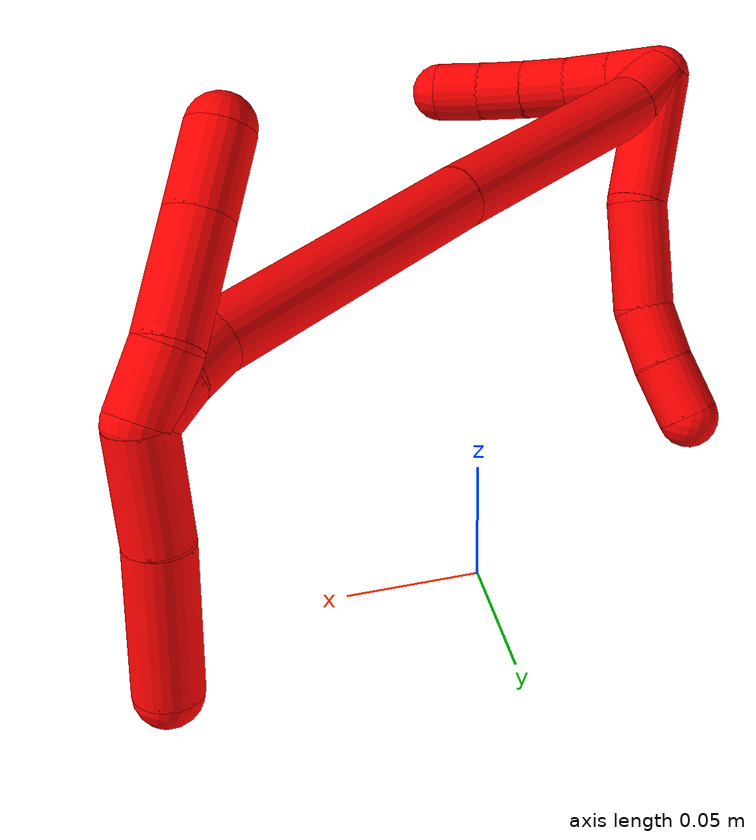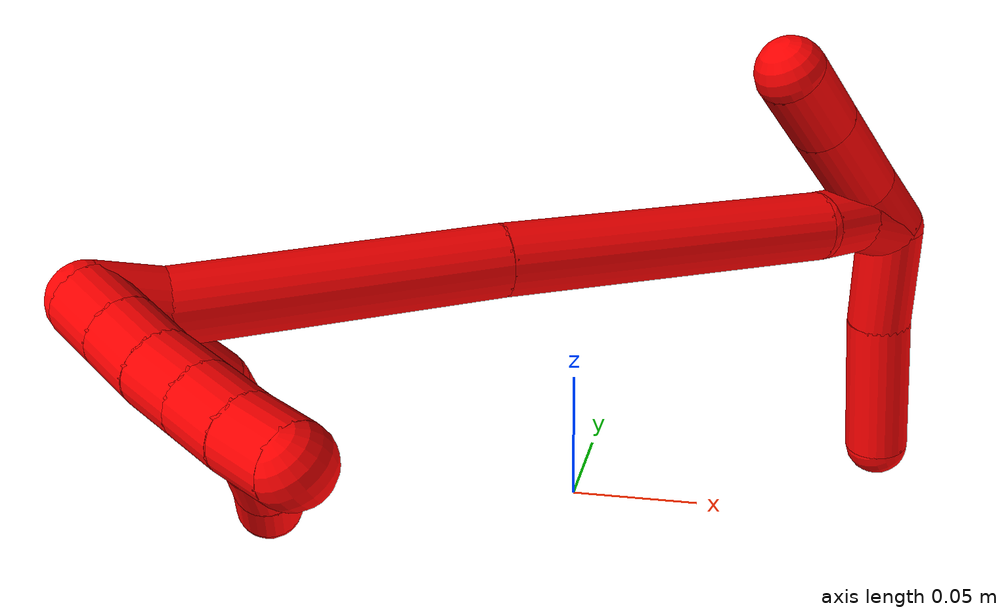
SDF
<sdf version="1.7">
 <world name="default">
  <model name="2">
   <static>0</static>
   <link name="2">
    <collision name="collision-cylinder-e_1_2_8">
     <pose>0.000896 0.006701 -0.02778 -2.90488 0.03133 -0.261992</pose>
     <geometry><cylinder><radius>0.0125</radius><length>0.057181</length></cylinder></geometry>
     <surface>
      <friction><ode><mu>1.16</mu><mu2>1.16</mu2><slip1>0</slip1><slip2>0</slip2></ode></friction>
      <contact><ode><kp>1e+06</kp><kd>1</kd><max_vel>0</max_vel><min_depth>0.001</min_depth></ode></contact>
     </surface>
    </collision>
    <visual name="visual-cylinder-e_1_2_8">
     <pose>0.000896 0.006701 -0.02778 -2.90488 0.03133 -0.261992</pose>
     <geometry><cylinder><radius>0.0125</radius><length>0.057181</length></cylinder></geometry>
     <material><ambient>1 0 0 1</ambient></material>
    </visual>
    <collision name="collision-cylinder-e_2_8_9">
     <pose>-0.004313 0.015752 -0.076634 -3.03059 -0.280283 2.39121</pose>
     <geometry><cylinder><radius>0.0125</radius><length>0.044133</length></cylinder></geometry>
     <surface>
      <friction><ode><mu>1.16</mu><mu2>1.16</mu2><slip1>0</slip1><slip2>0</slip2></ode></friction>
      <contact><ode><kp>1e+06</kp><kd>1</kd><max_vel>0</max_vel><min_depth>0.001</min_depth></ode></contact>
     </surface>
    </collision>
    <visual name="visual-cylinder-e_2_8_9">
     <pose>-0.004313 0.015752 -0.076634 -3.03059 -0.280283 2.39121</pose>
     <geometry><cylinder><radius>0.0125</radius><length>0.044133</length></cylinder></geometry>
     <material><ambient>1 0 0 1</ambient></material>
    </visual>
    <collision name="collision-cylinder-e_3_9_10">
     <pose>-0.01607 0.021455 -0.107707 -2.8179 -0.49205 1.98854</pose>
     <geometry><cylinder><radius>0.0125</radius><length>0.02393</length></cylinder></geometry>
     <surface>
      <friction><ode><mu>1.16</mu><mu2>1.16</mu2><slip1>0</slip1><slip2>0</slip2></ode></friction>
      <contact><ode><kp>1e+06</kp><kd>1</kd><max_vel>0</max_vel><min_depth>0.001</min_depth></ode></contact>
     </surface>
    </collision>
    <visual name="visual-cylinder-e_3_9_10">
     <pose>-0.01607 0.021455 -0.107707 -2.8179 -0.49205 1.98854</pose>
     <geometry><cylinder><radius>0.0125</radius><length>0.02393</length></cylinder></geometry>
     <material><ambient>1 0 0 1</ambient></material>
    </visual>
    <collision name="collision-cylinder-e_4_10_6">
     <pose>-0.028565 0.028432 -0.127362 -2.78268 -0.585727 2.05837</pose>
     <geometry><cylinder><radius>0.0125</radius><length>0.024756</length></cylinder></geometry>
     <surface>
      <friction><ode><mu>1.16</mu><mu2>1.16</mu2><slip1>0</slip1><slip2>0</slip2></ode></friction>
      <contact><ode><kp>1e+06</kp><kd>1</kd><max_vel>0</max_vel><min_depth>0.001</min_depth></ode></contact>
     </surface>
    </collision>
    <visual name="visual-cylinder-e_4_10_6">
     <pose>-0.028565 0.028432 -0.127362 -2.78268 -0.585727 2.05837</pose>
     <geometry><cylinder><radius>0.0125</radius><length>0.024756</length></cylinder></geometry>
     <material><ambient>1 0 0 1</ambient></material>
    </visual>
    <collision name="collision-cylinder-e_1_2_11">
     <pose>0.007096 -0.006487 -0.002751 1.97195 0.788923 1.12257</pose>
     <geometry><cylinder><radius>0.0125</radius><length>0.02</length></cylinder></geometry>
     <surface>
      <friction><ode><mu>1.16</mu><mu2>1.16</mu2><slip1>0</slip1><slip2>0</slip2></ode></friction>
      <contact><ode><kp>1e+06</kp><kd>1</kd><max_vel>0</max_vel><min_depth>0.001</min_depth></ode></contact>
     </surface>
    </collision>
    <visual name="visual-cylinder-e_1_2_11">
     <pose>0.007096 -0.006487 -0.002751 1.97195 0.788923 1.12257</pose>
     <geometry><cylinder><radius>0.0125</radius><length>0.02</length></cylinder></geometry>
     <material><ambient>1 0 0 1</ambient></material>
    </visual>
    <collision name="collision-cylinder-e_2_11_12">
     <pose>0.02129 -0.019463 -0.008241 1.97002 0.789271 1.12112</pose>
     <geometry><cylinder><radius>0.0125</radius><length>0.02</length></cylinder></geometry>
     <surface>
      <friction><ode><mu>1.16</mu><mu2>1.16</mu2><slip1>0</slip1><slip2>0</slip2></ode></friction>
      <contact><ode><kp>1e+06</kp><kd>1</kd><max_vel>0</max_vel><min_depth>0.001</min_depth></ode></contact>
     </surface>
    </collision>
    <visual name="visual-cylinder-e_2_11_12">
     <pose>0.02129 -0.019463 -0.008241 1.97002 0.789271 1.12112</pose>
     <geometry><cylinder><radius>0.0125</radius><length>0.02</length></cylinder></geometry>
     <material><ambient>1 0 0 1</ambient></material>
    </visual>
    <collision name="collision-cylinder-e_3_12_13">
     <pose>0.036021 -0.031939 -0.013413 1.9571 0.868232 1.2067</pose>
     <geometry><cylinder><radius>0.0125</radius><length>0.02</length></cylinder></geometry>
     <surface>
      <friction><ode><mu>1.16</mu><mu2>1.16</mu2><slip1>0</slip1><slip2>0</slip2></ode></friction>
      <contact><ode><kp>1e+06</kp><kd>1</kd><max_vel>0</max_vel><min_depth>0.001</min_depth></ode></contact>
     </surface>
    </collision>
    <visual name="visual-cylinder-e_3_12_13">
     <pose>0.036021 -0.031939 -0.013413 1.9571 0.868232 1.2067</pose>
     <geometry><cylinder><radius>0.0125</radius><length>0.02</length></cylinder></geometry>
     <material><ambient>1 0 0 1</ambient></material>
    </visual>
    <collision name="collision-cylinder-e_4_13_14">
     <pose>0.051304 -0.043985 -0.018023 1.91539 0.87121 1.16889</pose>
     <geometry><cylinder><radius>0.0125</radius><length>0.02</length></cylinder></geometry>
     <surface>
      <friction><ode><mu>1.16</mu><mu2>1.16</mu2><slip1>0</slip1><slip2>0</slip2></ode></friction>
      <contact><ode><kp>1e+06</kp><kd>1</kd><max_vel>0</max_vel><min_depth>0.001</min_depth></ode></contact>
     </surface>
    </collision>
    <visual name="visual-cylinder-e_4_13_14">
     <pose>0.051304 -0.043985 -0.018023 1.91539 0.87121 1.16889</pose>
     <geometry><cylinder><radius>0.0125</radius><length>0.02</length></cylinder></geometry>
     <material><ambient>1 0 0 1</ambient></material>
    </visual>
    <collision name="collision-cylinder-e_5_14_5">
     <pose>0.06702 -0.055588 -0.022257 1.92643 0.938201 1.25974</pose>
     <geometry><cylinder><radius>0.0125</radius><length>0.02</length></cylinder></geometry>
     <surface>
      <friction><ode><mu>1.16</mu><mu2>1.16</mu2><slip1>0</slip1><slip2>0</slip2></ode></friction>
      <contact><ode><kp>1e+06</kp><kd>1</kd><max_vel>0</max_vel><min_depth>0.001</min_depth></ode></contact>
     </surface>
    </collision>
    <visual name="visual-cylinder-e_5_14_5">
     <pose>0.06702 -0.055588 -0.022257 1.92643 0.938201 1.25974</pose>
     <geometry><cylinder><radius>0.0125</radius><length>0.02</length></cylinder></geometry>
     <material><ambient>1 0 0 1</ambient></material>
    </visual>
    <collision name="collision-cylinder-e_1_2_15">
     <pose>0.00649 0.004428 -0.008234 -2.64824 0.606846 -1.78694</pose>
     <geometry><cylinder><radius>0.0125</radius><length>0.022763</length></cylinder></geometry>
     <surface>
      <friction><ode><mu>1.16</mu><mu2>1.16</mu2><slip1>0</slip1><slip2>0</slip2></ode></friction>
      <contact><ode><kp>1e+06</kp><kd>1</kd><max_vel>0</max_vel><min_depth>0.001</min_depth></ode></contact>
     </surface>
    </collision>
    <visual name="visual-cylinder-e_1_2_15">
     <pose>0.00649 0.004428 -0.008234 -2.64824 0.606846 -1.78694</pose>
     <geometry><cylinder><radius>0.0125</radius><length>0.022763</length></cylinder></geometry>
     <material><ambient>1 0 0 1</ambient></material>
    </visual>
    <collision name="collision-cylinder-e_2_15_16">
     <pose>0.052119 0.034677 -0.045633 -2.41692 0.787763 -1.66266</pose>
     <geometry><cylinder><radius>0.0125</radius><length>0.110437</length></cylinder></geometry>
     <surface>
      <friction><ode><mu>1.16</mu><mu2>1.16</mu2><slip1>0</slip1><slip2>0</slip2></ode></friction>
      <contact><ode><kp>1e+06</kp><kd>1</kd><max_vel>0</max_vel><min_depth>0.001</min_depth></ode></contact>
     </surface>
    </collision>
    <visual name="visual-cylinder-e_2_15_16">
     <pose>0.052119 0.034677 -0.045633 -2.41692 0.787763 -1.66266</pose>
     <geometry><cylinder><radius>0.0125</radius><length>0.110437</length></cylinder></geometry>
     <material><ambient>1 0 0 1</ambient></material>
    </visual>
    <collision name="collision-cylinder-e_3_16_17">
     <pose>0.134664 0.089048 -0.109393 -2.45165 0.769015 -1.68927</pose>
     <geometry><cylinder><radius>0.0125</radius><length>0.124837</length></cylinder></geometry>
     <surface>
      <friction><ode><mu>1.16</mu><mu2>1.16</mu2><slip1>0</slip1><slip2>0</slip2></ode></friction>
      <contact><ode><kp>1e+06</kp><kd>1</kd><max_vel>0</max_vel><min_depth>0.001</min_depth></ode></contact>
     </surface>
    </collision>
    <visual name="visual-cylinder-e_3_16_17">
     <pose>0.134664 0.089048 -0.109393 -2.45165 0.769015 -1.68927</pose>
     <geometry><cylinder><radius>0.0125</radius><length>0.124837</length></cylinder></geometry>
     <material><ambient>1 0 0 1</ambient></material>
    </visual>
    <collision name="collision-cylinder-e_4_17_18">
     <pose>0.183457 0.124218 -0.150211 -2.3252 0.535025 -1.12971</pose>
     <geometry><cylinder><radius>0.0125</radius><length>0.021125</length></cylinder></geometry>
     <surface>
      <friction><ode><mu>1.16</mu><mu2>1.16</mu2><slip1>0</slip1><slip2>0</slip2></ode></friction>
      <contact><ode><kp>1e+06</kp><kd>1</kd><max_vel>0</max_vel><min_depth>0.001</min_depth></ode></contact>
     </surface>
    </collision>
    <visual name="visual-cylinder-e_4_17_18">
     <pose>0.183457 0.124218 -0.150211 -2.3252 0.535025 -1.12971</pose>
     <geometry><cylinder><radius>0.0125</radius><length>0.021125</length></cylinder></geometry>
     <material><ambient>1 0 0 1</ambient></material>
    </visual>
    <collision name="collision-cylinder-e_5_18_1">
     <pose>0.193503 0.135394 -0.164563 -2.63083 0.463727 -1.47043</pose>
     <geometry><cylinder><radius>0.0125</radius><length>0.020837</length></cylinder></geometry>
     <surface>
      <friction><ode><mu>1.16</mu><mu2>1.16</mu2><slip1>0</slip1><slip2>0</slip2></ode></friction>
      <contact><ode><kp>1e+06</kp><kd>1</kd><max_vel>0</max_vel><min_depth>0.001</min_depth></ode></contact>
     </surface>
    </collision>
    <visual name="visual-cylinder-e_5_18_1">
     <pose>0.193503 0.135394 -0.164563 -2.63083 0.463727 -1.47043</pose>
     <geometry><cylinder><radius>0.0125</radius><length>0.020837</length></cylinder></geometry>
     <material><ambient>1 0 0 1</ambient></material>
    </visual>
    <collision name="collision-cylinder-e_1_1_19">
     <pose>0.190011 0.134828 -0.191488 2.87557 -0.396329 -1.96604</pose>
     <geometry><cylinder><radius>0.0125</radius><length>0.042237</length></cylinder></geometry>
     <surface>
      <friction><ode><mu>1.16</mu><mu2>1.16</mu2><slip1>0</slip1><slip2>0</slip2></ode></friction>
      <contact><ode><kp>1e+06</kp><kd>1</kd><max_vel>0</max_vel><min_depth>0.001</min_depth></ode></contact>
     </surface>
    </collision>
    <visual name="visual-cylinder-e_1_1_19">
     <pose>0.190011 0.134828 -0.191488 2.87557 -0.396329 -1.96604</pose>
     <geometry><cylinder><radius>0.0125</radius><length>0.042237</length></cylinder></geometry>
     <material><ambient>1 0 0 1</ambient></material>
    </visual>
    <collision name="collision-cylinder-e_2_19_4">
     <pose>0.17308 0.120761 -0.236305 2.81047 -0.308834 -1.49997</pose>
     <geometry><cylinder><radius>0.0125</radius><length>0.057763</length></cylinder></geometry>
     <surface>
      <friction><ode><mu>1.16</mu><mu2>1.16</mu2><slip1>0</slip1><slip2>0</slip2></ode></friction>
      <contact><ode><kp>1e+06</kp><kd>1</kd><max_vel>0</max_vel><min_depth>0.001</min_depth></ode></contact>
     </surface>
    </collision>
    <visual name="visual-cylinder-e_2_19_4">
     <pose>0.17308 0.120761 -0.236305 2.81047 -0.308834 -1.49997</pose>
     <geometry><cylinder><radius>0.0125</radius><length>0.057763</length></cylinder></geometry>
     <material><ambient>1 0 0 1</ambient></material>
    </visual>
    <collision name="collision-cylinder-e_1_1_20">
     <pose>0.196512 0.138949 -0.159847 0.077752 -0.127448 -0.004964</pose>
     <geometry><cylinder><radius>0.0125</radius><length>0.025979</length></cylinder></geometry>
     <surface>
      <friction><ode><mu>1.16</mu><mu2>1.16</mu2><slip1>0</slip1><slip2>0</slip2></ode></friction>
      <contact><ode><kp>1e+06</kp><kd>1</kd><max_vel>0</max_vel><min_depth>0.001</min_depth></ode></contact>
     </surface>
    </collision>
    <visual name="visual-cylinder-e_1_1_20">
     <pose>0.196512 0.138949 -0.159847 0.077752 -0.127448 -0.004964</pose>
     <geometry><cylinder><radius>0.0125</radius><length>0.025979</length></cylinder></geometry>
     <material><ambient>1 0 0 1</ambient></material>
    </visual>
    <collision name="collision-cylinder-e_2_20_21">
     <pose>0.19386 0.131987 -0.126211 0.279232 -0.046252 -0.006501</pose>
     <geometry><cylinder><radius>0.0125</radius><length>0.043303</length></cylinder></geometry>
     <surface>
      <friction><ode><mu>1.16</mu><mu2>1.16</mu2><slip1>0</slip1><slip2>0</slip2></ode></friction>
      <contact><ode><kp>1e+06</kp><kd>1</kd><max_vel>0</max_vel><min_depth>0.001</min_depth></ode></contact>
     </surface>
    </collision>
    <visual name="visual-cylinder-e_2_20_21">
     <pose>0.19386 0.131987 -0.126211 0.279232 -0.046252 -0.006501</pose>
     <geometry><cylinder><radius>0.0125</radius><length>0.043303</length></cylinder></geometry>
     <material><ambient>1 0 0 1</ambient></material>
    </visual>
    <collision name="collision-cylinder-e_3_21_3">
     <pose>0.192166 0.12193 -0.090634 0.270192 -0.045162 -0.00614</pose>
     <geometry><cylinder><radius>0.0125</radius><length>0.030718</length></cylinder></geometry>
     <surface>
      <friction><ode><mu>1.16</mu><mu2>1.16</mu2><slip1>0</slip1><slip2>0</slip2></ode></friction>
      <contact><ode><kp>1e+06</kp><kd>1</kd><max_vel>0</max_vel><min_depth>0.001</min_depth></ode></contact>
     </surface>
    </collision>
    <visual name="visual-cylinder-e_3_21_3">
     <pose>0.192166 0.12193 -0.090634 0.270192 -0.045162 -0.00614</pose>
     <geometry><cylinder><radius>0.0125</radius><length>0.030718</length></cylinder></geometry>
     <material><ambient>1 0 0 1</ambient></material>
    </visual>
    <collision name="collision-sphere-3">
     <pose>0.191472 0.117835 -0.075847 0 -0 0</pose>
     <geometry><sphere><radius>0.0125</radius></sphere></geometry>
     <surface>
      <friction><ode><mu>1.16</mu><mu2>1.16</mu2><slip1>0</slip1><slip2>0</slip2></ode></friction>
      <contact><ode><kp>1e+06</kp><kd>1</kd><max_vel>0</max_vel><min_depth>0.001</min_depth></ode></contact>
     </surface>
    </collision>
    <visual name="visual-sphere-3">
     <pose>0.191472 0.117835 -0.075847 0 -0 0</pose>
     <geometry><sphere><radius>0.0125</radius></sphere></geometry>
     <material><ambient>1 0 0 1</ambient></material>
    </visual>
    <collision name="collision-sphere-21">
     <pose>0.192859 0.126026 -0.10542 0 -0 0</pose>
     <geometry><sphere><radius>0.0125</radius></sphere></geometry>
     <surface>
      <friction><ode><mu>1.16</mu><mu2>1.16</mu2><slip1>0</slip1><slip2>0</slip2></ode></friction>
      <contact><ode><kp>1e+06</kp><kd>1</kd><max_vel>0</max_vel><min_depth>0.001</min_depth></ode></contact>
     </surface>
    </collision>
    <visual name="visual-sphere-21">
     <pose>0.192859 0.126026 -0.10542 0 -0 0</pose>
     <geometry><sphere><radius>0.0125</radius></sphere></geometry>
     <material><ambient>1 0 0 1</ambient></material>
    </visual>
    <collision name="collision-sphere-20">
     <pose>0.194861 0.137948 -0.147001 0 -0 0</pose>
     <geometry><sphere><radius>0.0125</radius></sphere></geometry>
     <surface>
      <friction><ode><mu>1.16</mu><mu2>1.16</mu2><slip1>0</slip1><slip2>0</slip2></ode></friction>
      <contact><ode><kp>1e+06</kp><kd>1</kd><max_vel>0</max_vel><min_depth>0.001</min_depth></ode></contact>
     </surface>
    </collision>
    <visual name="visual-sphere-20">
     <pose>0.194861 0.137948 -0.147001 0 -0 0</pose>
     <geometry><sphere><radius>0.0125</radius></sphere></geometry>
     <material><ambient>1 0 0 1</ambient></material>
    </visual>
    <collision name="collision-sphere-4">
     <pose>0.164301 0.111816 -0.262325 0 -0 0</pose>
     <geometry><sphere><radius>0.0125</radius></sphere></geometry>
     <surface>
      <friction><ode><mu>1.16</mu><mu2>1.16</mu2><slip1>0</slip1><slip2>0</slip2></ode></friction>
      <contact><ode><kp>1e+06</kp><kd>1</kd><max_vel>0</max_vel><min_depth>0.001</min_depth></ode></contact>
     </surface>
    </collision>
    <visual name="visual-sphere-4">
     <pose>0.164301 0.111816 -0.262325 0 -0 0</pose>
     <geometry><sphere><radius>0.0125</radius></sphere></geometry>
     <material><ambient>1 0 0 1</ambient></material>
    </visual>
    <collision name="collision-sphere-11">
     <pose>0.014192 -0.012973 -0.005503 0 -0 0</pose>
     <geometry><sphere><radius>0.0125</radius></sphere></geometry>
     <surface>
      <friction><ode><mu>1.16</mu><mu2>1.16</mu2><slip1>0</slip1><slip2>0</slip2></ode></friction>
      <contact><ode><kp>1e+06</kp><kd>1</kd><max_vel>0</max_vel><min_depth>0.001</min_depth></ode></contact>
     </surface>
    </collision>
    <visual name="visual-sphere-11">
     <pose>0.014192 -0.012973 -0.005503 0 -0 0</pose>
     <geometry><sphere><radius>0.0125</radius></sphere></geometry>
     <material><ambient>1 0 0 1</ambient></material>
    </visual>
    <collision name="collision-sphere-6">
     <pose>-0.035408 0.032055 -0.13702 0 -0 0</pose>
     <geometry><sphere><radius>0.0125</radius></sphere></geometry>
     <surface>
      <friction><ode><mu>1.16</mu><mu2>1.16</mu2><slip1>0</slip1><slip2>0</slip2></ode></friction>
      <contact><ode><kp>1e+06</kp><kd>1</kd><max_vel>0</max_vel><min_depth>0.001</min_depth></ode></contact>
     </surface>
    </collision>
    <visual name="visual-sphere-6">
     <pose>-0.035408 0.032055 -0.13702 0 -0 0</pose>
     <geometry><sphere><radius>0.0125</radius></sphere></geometry>
     <material><ambient>1 0 0 1</ambient></material>
    </visual>
    <collision name="collision-sphere-10">
     <pose>-0.021723 0.024809 -0.117705 0 -0 0</pose>
     <geometry><sphere><radius>0.0125</radius></sphere></geometry>
     <surface>
      <friction><ode><mu>1.16</mu><mu2>1.16</mu2><slip1>0</slip1><slip2>0</slip2></ode></friction>
      <contact><ode><kp>1e+06</kp><kd>1</kd><max_vel>0</max_vel><min_depth>0.001</min_depth></ode></contact>
     </surface>
    </collision>
    <visual name="visual-sphere-10">
     <pose>-0.021723 0.024809 -0.117705 0 -0 0</pose>
     <geometry><sphere><radius>0.0125</radius></sphere></geometry>
     <material><ambient>1 0 0 1</ambient></material>
    </visual>
    <collision name="collision-sphere-9">
     <pose>-0.010417 0.018101 -0.097709 0 -0 0</pose>
     <geometry><sphere><radius>0.0125</radius></sphere></geometry>
     <surface>
      <friction><ode><mu>1.16</mu><mu2>1.16</mu2><slip1>0</slip1><slip2>0</slip2></ode></friction>
      <contact><ode><kp>1e+06</kp><kd>1</kd><max_vel>0</max_vel><min_depth>0.001</min_depth></ode></contact>
     </surface>
    </collision>
    <visual name="visual-sphere-9">
     <pose>-0.010417 0.018101 -0.097709 0 -0 0</pose>
     <geometry><sphere><radius>0.0125</radius></sphere></geometry>
     <material><ambient>1 0 0 1</ambient></material>
    </visual>
    <collision name="collision-sphere-2">
     <geometry><sphere><radius>0.0125</radius></sphere></geometry>
     <surface>
      <friction><ode><mu>1.16</mu><mu2>1.16</mu2><slip1>0</slip1><slip2>0</slip2></ode></friction>
      <contact><ode><kp>1e+06</kp><kd>1</kd><max_vel>0</max_vel><min_depth>0.001</min_depth></ode></contact>
     </surface>
    </collision>
    <visual name="visual-sphere-2">
     <geometry><sphere><radius>0.0125</radius></sphere></geometry>
     <material><ambient>1 0 0 1</ambient></material>
    </visual>
    <collision name="collision-sphere-19">
     <pose>0.181858 0.129706 -0.210285 0 -0 0</pose>
     <geometry><sphere><radius>0.0125</radius></sphere></geometry>
     <surface>
      <friction><ode><mu>1.16</mu><mu2>1.16</mu2><slip1>0</slip1><slip2>0</slip2></ode></friction>
      <contact><ode><kp>1e+06</kp><kd>1</kd><max_vel>0</max_vel><min_depth>0.001</min_depth></ode></contact>
     </surface>
    </collision>
    <visual name="visual-sphere-19">
     <pose>0.181858 0.129706 -0.210285 0 -0 0</pose>
     <geometry><sphere><radius>0.0125</radius></sphere></geometry>
     <material><ambient>1 0 0 1</ambient></material>
    </visual>
    <collision name="collision-sphere-8">
     <pose>0.001791 0.013403 -0.055559 0 -0 0</pose>
     <geometry><sphere><radius>0.0125</radius></sphere></geometry>
     <surface>
      <friction><ode><mu>1.16</mu><mu2>1.16</mu2><slip1>0</slip1><slip2>0</slip2></ode></friction>
      <contact><ode><kp>1e+06</kp><kd>1</kd><max_vel>0</max_vel><min_depth>0.001</min_depth></ode></contact>
     </surface>
    </collision>
    <visual name="visual-sphere-8">
     <pose>0.001791 0.013403 -0.055559 0 -0 0</pose>
     <geometry><sphere><radius>0.0125</radius></sphere></geometry>
     <material><ambient>1 0 0 1</ambient></material>
    </visual>
    <collision name="collision-sphere-12">
     <pose>0.028389 -0.025953 -0.010978 0 -0 0</pose>
     <geometry><sphere><radius>0.0125</radius></sphere></geometry>
     <surface>
      <friction><ode><mu>1.16</mu><mu2>1.16</mu2><slip1>0</slip1><slip2>0</slip2></ode></friction>
      <contact><ode><kp>1e+06</kp><kd>1</kd><max_vel>0</max_vel><min_depth>0.001</min_depth></ode></contact>
     </surface>
    </collision>
    <visual name="visual-sphere-12">
     <pose>0.028389 -0.025953 -0.010978 0 -0 0</pose>
     <geometry><sphere><radius>0.0125</radius></sphere></geometry>
     <material><ambient>1 0 0 1</ambient></material>
    </visual>
    <collision name="collision-sphere-13">
     <pose>0.043652 -0.037924 -0.015848 0 -0 0</pose>
     <geometry><sphere><radius>0.0125</radius></sphere></geometry>
     <surface>
      <friction><ode><mu>1.16</mu><mu2>1.16</mu2><slip1>0</slip1><slip2>0</slip2></ode></friction>
      <contact><ode><kp>1e+06</kp><kd>1</kd><max_vel>0</max_vel><min_depth>0.001</min_depth></ode></contact>
     </surface>
    </collision>
    <visual name="visual-sphere-13">
     <pose>0.043652 -0.037924 -0.015848 0 -0 0</pose>
     <geometry><sphere><radius>0.0125</radius></sphere></geometry>
     <material><ambient>1 0 0 1</ambient></material>
    </visual>
    <collision name="collision-sphere-14">
     <pose>0.058955 -0.050045 -0.020198 0 -0 0</pose>
     <geometry><sphere><radius>0.0125</radius></sphere></geometry>
     <surface>
      <friction><ode><mu>1.16</mu><mu2>1.16</mu2><slip1>0</slip1><slip2>0</slip2></ode></friction>
      <contact><ode><kp>1e+06</kp><kd>1</kd><max_vel>0</max_vel><min_depth>0.001</min_depth></ode></contact>
     </surface>
    </collision>
    <visual name="visual-sphere-14">
     <pose>0.058955 -0.050045 -0.020198 0 -0 0</pose>
     <geometry><sphere><radius>0.0125</radius></sphere></geometry>
     <material><ambient>1 0 0 1</ambient></material>
    </visual>
    <collision name="collision-sphere-5">
     <pose>0.075085 -0.06113 -0.024315 0 -0 0</pose>
     <geometry><sphere><radius>0.0125</radius></sphere></geometry>
     <surface>
      <friction><ode><mu>1.16</mu><mu2>1.16</mu2><slip1>0</slip1><slip2>0</slip2></ode></friction>
      <contact><ode><kp>1e+06</kp><kd>1</kd><max_vel>0</max_vel><min_depth>0.001</min_depth></ode></contact>
     </surface>
    </collision>
    <visual name="visual-sphere-5">
     <pose>0.075085 -0.06113 -0.024315 0 -0 0</pose>
     <geometry><sphere><radius>0.0125</radius></sphere></geometry>
     <material><ambient>1 0 0 1</ambient></material>
    </visual>
    <collision name="collision-sphere-15">
     <pose>0.012981 0.008855 -0.016469 0 -0 0</pose>
     <geometry><sphere><radius>0.0125</radius></sphere></geometry>
     <surface>
      <friction><ode><mu>1.16</mu><mu2>1.16</mu2><slip1>0</slip1><slip2>0</slip2></ode></friction>
      <contact><ode><kp>1e+06</kp><kd>1</kd><max_vel>0</max_vel><min_depth>0.001</min_depth></ode></contact>
     </surface>
    </collision>
    <visual name="visual-sphere-15">
     <pose>0.012981 0.008855 -0.016469 0 -0 0</pose>
     <geometry><sphere><radius>0.0125</radius></sphere></geometry>
     <material><ambient>1 0 0 1</ambient></material>
    </visual>
    <collision name="collision-sphere-16">
     <pose>0.091257 0.060498 -0.074798 0 -0 0</pose>
     <geometry><sphere><radius>0.0125</radius></sphere></geometry>
     <surface>
      <friction><ode><mu>1.16</mu><mu2>1.16</mu2><slip1>0</slip1><slip2>0</slip2></ode></friction>
      <contact><ode><kp>1e+06</kp><kd>1</kd><max_vel>0</max_vel><min_depth>0.001</min_depth></ode></contact>
     </surface>
    </collision>
    <visual name="visual-sphere-16">
     <pose>0.091257 0.060498 -0.074798 0 -0 0</pose>
     <geometry><sphere><radius>0.0125</radius></sphere></geometry>
     <material><ambient>1 0 0 1</ambient></material>
    </visual>
    <collision name="collision-sphere-17">
     <pose>0.178072 0.117597 -0.143988 0 -0 0</pose>
     <geometry><sphere><radius>0.0125</radius></sphere></geometry>
     <surface>
      <friction><ode><mu>1.16</mu><mu2>1.16</mu2><slip1>0</slip1><slip2>0</slip2></ode></friction>
      <contact><ode><kp>1e+06</kp><kd>1</kd><max_vel>0</max_vel><min_depth>0.001</min_depth></ode></contact>
     </surface>
    </collision>
    <visual name="visual-sphere-17">
     <pose>0.178072 0.117597 -0.143988 0 -0 0</pose>
     <geometry><sphere><radius>0.0125</radius></sphere></geometry>
     <material><ambient>1 0 0 1</ambient></material>
    </visual>
    <collision name="collision-sphere-18">
     <pose>0.188843 0.130839 -0.156434 0 -0 0</pose>
     <geometry><sphere><radius>0.0125</radius></sphere></geometry>
     <surface>
      <friction><ode><mu>1.16</mu><mu2>1.16</mu2><slip1>0</slip1><slip2>0</slip2></ode></friction>
      <contact><ode><kp>1e+06</kp><kd>1</kd><max_vel>0</max_vel><min_depth>0.001</min_depth></ode></contact>
     </surface>
    </collision>
    <visual name="visual-sphere-18">
     <pose>0.188843 0.130839 -0.156434 0 -0 0</pose>
     <geometry><sphere><radius>0.0125</radius></sphere></geometry>
     <material><ambient>1 0 0 1</ambient></material>
    </visual>
    <collision name="collision-sphere-1">
     <pose>0.198163 0.13995 -0.172692 0 -0 0</pose>
     <geometry><sphere><radius>0.0125</radius></sphere></geometry>
     <surface>
      <friction><ode><mu>1.16</mu><mu2>1.16</mu2><slip1>0</slip1><slip2>0</slip2></ode></friction>
      <contact><ode><kp>1e+06</kp><kd>1</kd><max_vel>0</max_vel><min_depth>0.001</min_depth></ode></contact>
     </surface>
    </collision>
    <visual name="visual-sphere-1">
     <pose>0.198163 0.13995 -0.172692 0 -0 0</pose>
     <geometry><sphere><radius>0.0125</radius></sphere></geometry>
     <material><ambient>1 0 0 1</ambient></material>
    </visual>
    <inertial>
     <pose>0.093963 0.060506 -0.095493 0 -0 0</pose>
     <mass>0.75</mass>
     <inertia>
      <ixx>-0.000202</ixx>
      <ixy>0</ixy>
      <ixz>0</ixz>
      <iyy>-4.9e-05</iyy>
      <iyz>0</iyz>
      <izz>-0.000343</izz>
     </inertia>
    </inertial>
   </link>
   <pose>-0.121106 -0.149583 0.123759 0.493225 -0.348077 -0.125006</pose>
  </model>
 </world>
</sdf>
